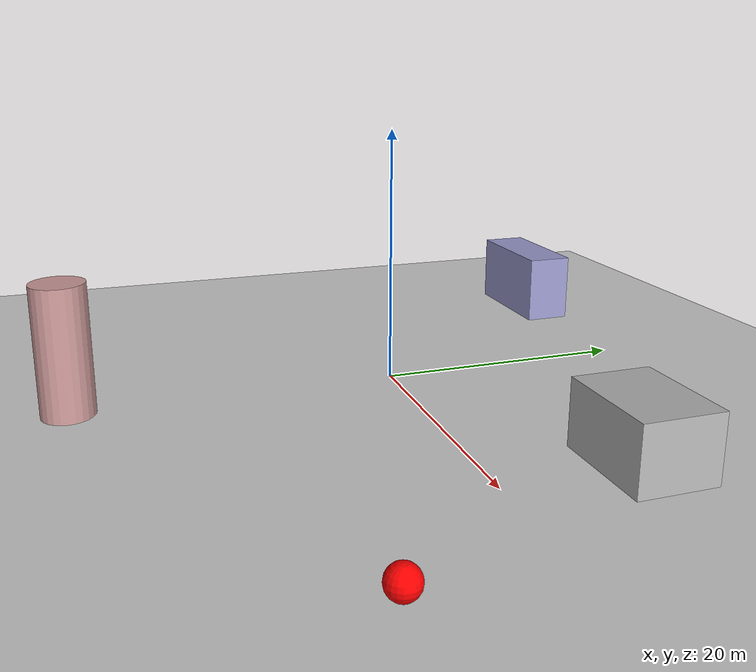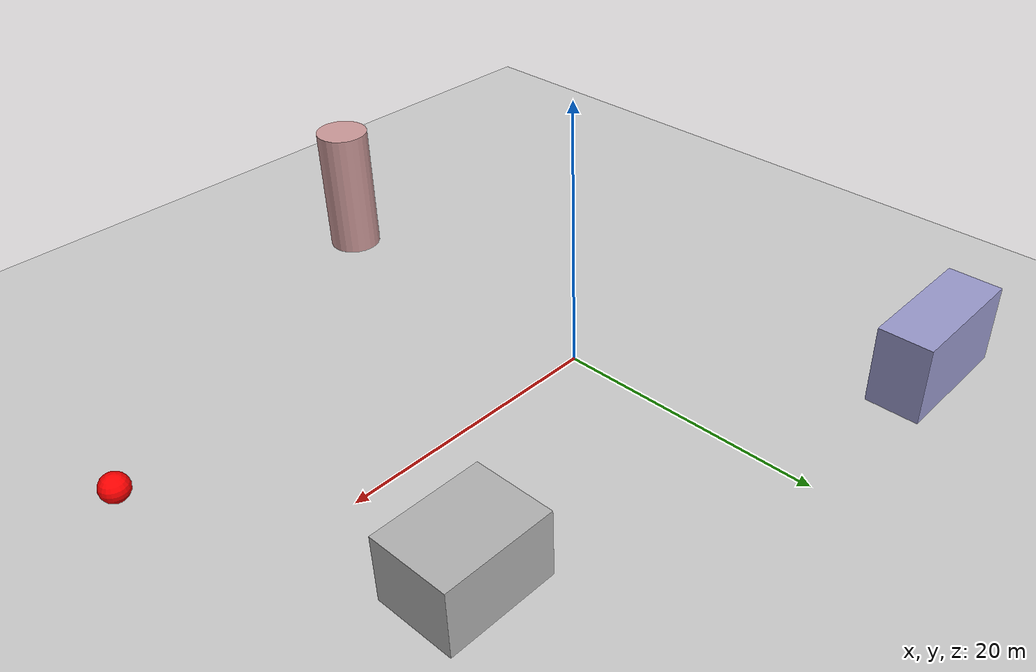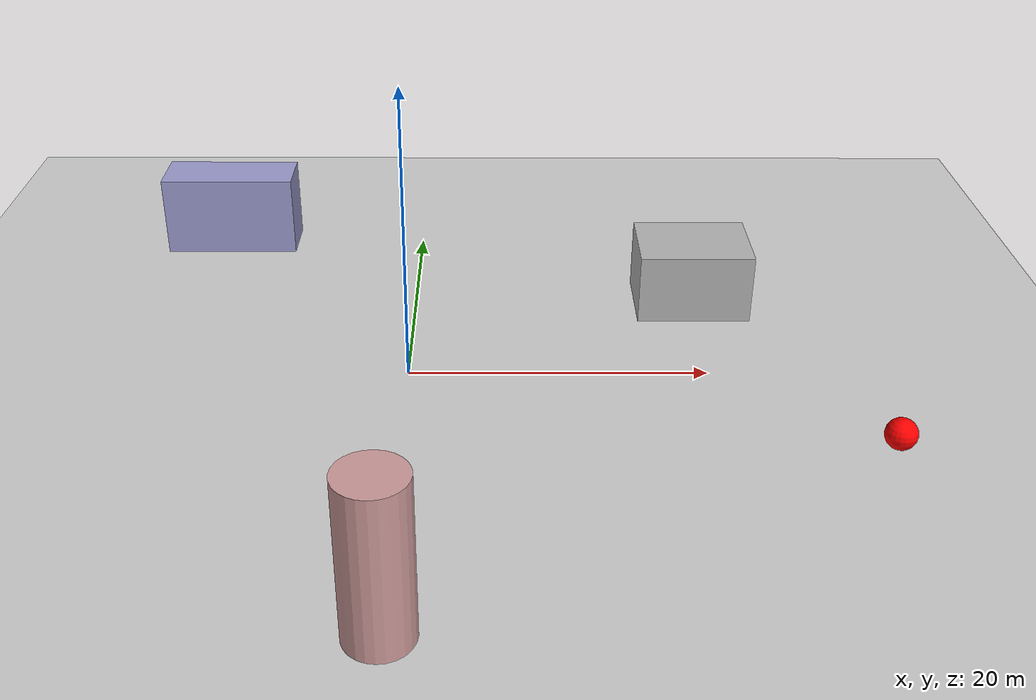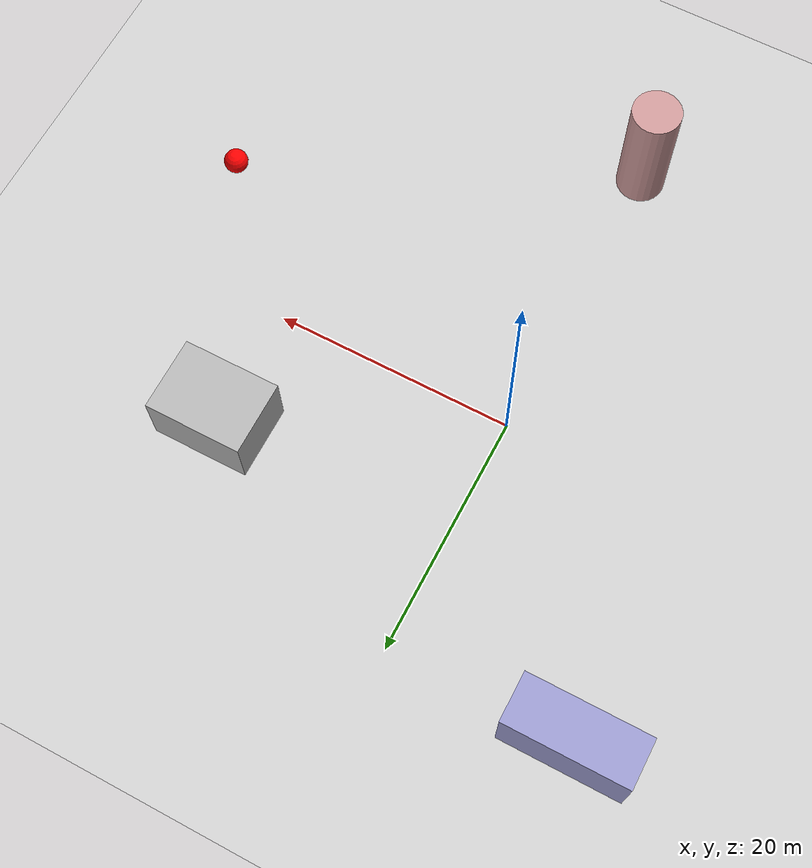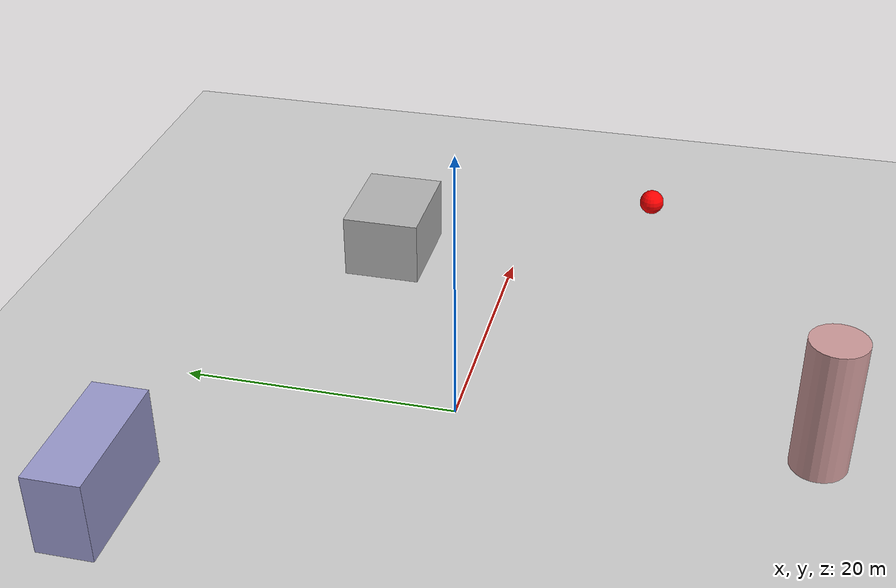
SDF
<sdf version="1.8">
 <world name="drone_swarm_world">
  <physics name="1ms" type="ignored">
   <max_step_size>0.001</max_step_size>
   <real_time_factor>1.0</real_time_factor>
  </physics>
  <plugin filename="gz-sim-physics-system" name="gz::sim::systems::Physics"/>
  <plugin filename="gz-sim-user-commands-system" name="gz::sim::systems::UserCommands"/>
  <plugin filename="gz-sim-scene-broadcaster-system" name="gz::sim::systems::SceneBroadcaster"/>
  <plugin filename="gz-sim-sensors-system" name="gz::sim::systems::Sensors"/>
  <light type="directional" name="sun">
   <pose>0 0 10 0 0 0</pose>
   <diffuse>0.8 0.8 0.8 1</diffuse>
   <specular>0.2 0.2 0.2 1</specular>
   <attenuation>
    <range>1000</range>
    <constant>0.9</constant>
    <linear>0.01</linear>
    <quadratic>0.001</quadratic>
   </attenuation>
   <direction>-0.5 0.1 -0.9</direction>
  </light>
  <model name="ground_plane">
   <static>true</static>
   <link name="link">
    <collision name="collision">
     <geometry><plane><normal>0 0 1</normal><size>200 200</size></plane></geometry>
    </collision>
    <visual name="visual">
     <geometry><plane><normal>0 0 1</normal><size>200 200</size></plane></geometry>
     <material>
      <ambient>0.8 0.8 0.8 1</ambient>
      <diffuse>0.8 0.8 0.8 1</diffuse>
      <specular>0.8 0.8 0.8 1</specular>
     </material>
    </visual>
   </link>
  </model>
  <model name="building_1">
   <pose>20 10 2.5 0 0 0</pose>
   <static>true</static>
   <link name="link">
    <collision name="collision"><geometry><box><size>8 6 5</size></box></geometry></collision>
    <visual name="visual">
     <geometry><box><size>8 6 5</size></box></geometry>
     <material><ambient>0.7 0.7 0.7 1</ambient><diffuse>0.7 0.7 0.7 1</diffuse></material>
    </visual>
   </link>
  </model>
  <model name="building_2">
   <pose>-15 20 3 0 0 0</pose>
   <static>true</static>
   <link name="link">
    <collision name="collision"><geometry><box><size>10 4 6</size></box></geometry></collision>
    <visual name="visual">
     <geometry><box><size>10 4 6</size></box></geometry>
     <material><ambient>0.6 0.6 0.8 1</ambient><diffuse>0.6 0.6 0.8 1</diffuse></material>
    </visual>
   </link>
  </model>
  <model name="tower">
   <pose>0 -25 5 0 0 0</pose>
   <static>true</static>
   <link name="link">
    <collision name="collision">
     <geometry><cylinder><radius>2</radius><length>10</length></cylinder></geometry>
    </collision>
    <visual name="visual">
     <geometry><cylinder><radius>2</radius><length>10</length></cylinder></geometry>
     <material><ambient>0.8 0.6 0.6 1</ambient><diffuse>0.8 0.6 0.6 1</diffuse></material>
    </visual>
   </link>
  </model>
  <model name="target">
   <pose>30 -10 2 0 0 0</pose>
   <static>true</static>
   <link name="link">
    <collision name="collision"><geometry><sphere><radius>1</radius></sphere></geometry></collision>
    <visual name="visual">
     <geometry><sphere><radius>1</radius></sphere></geometry>
     <material><ambient>1 0 0 1</ambient><diffuse>1 0 0 1</diffuse></material>
    </visual>
   </link>
  </model>
 </world>
</sdf>
